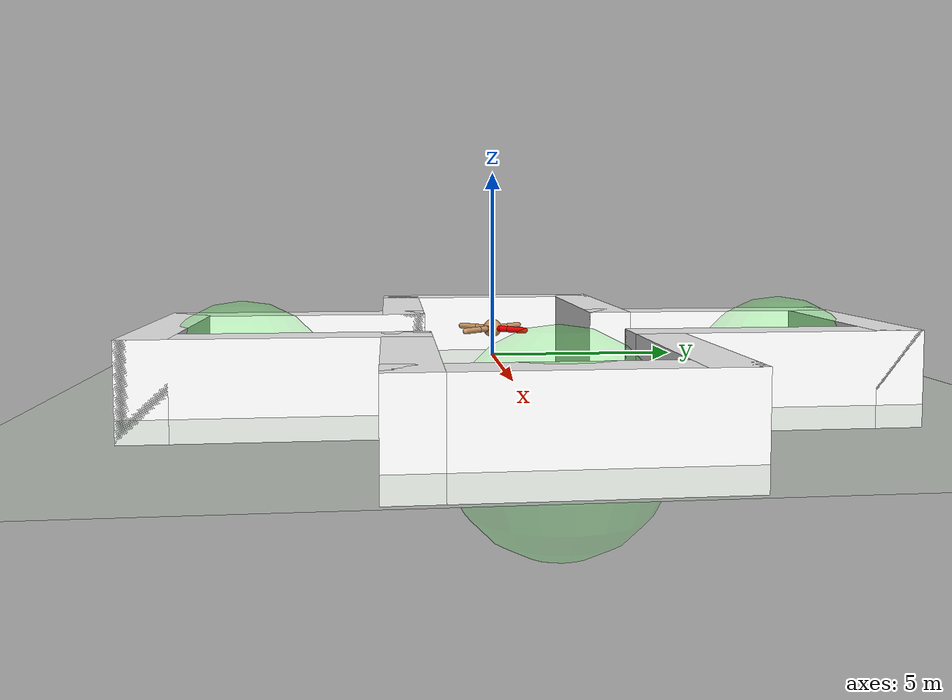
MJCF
<mujoco model="ant">
  <compiler angle="degree" coordinate="local" inertiafromgeom="true"/>
  <option integrator="RK4" timestep="0.01"/>
  <custom>
    <numeric data="0.0 0.0 0.55 1.0 0.0 0.0 0.0 0.0 1.0 0.0 -1.0 0.0 -1.0 0.0 1.0" name="init_qpos"/>
  </custom>
  <default>
    <joint armature="1" damping="1" limited="true"/>
    <geom conaffinity="0" condim="3" density="5.0" friction="1 0.5 0.5" margin="0.01" rgba="0.8 0.6 0.4 1"/>
  </default>
  <asset>
    <texture builtin="gradient" height="100" rgb1="1 1 1" rgb2="0 0 0" type="skybox" width="100"/>
    <texture builtin="flat" height="1278" mark="cross" markrgb="1 1 1" name="texgeom" random="0.01" rgb1="0.8 0.6 0.4" rgb2="0.8 0.6 0.4" type="cube" width="127"/>
    <texture builtin="checker" height="100" name="texplane" rgb1="0 0 0" rgb2="0.8 0.8 0.8" type="2d" width="100"/>
    <material name="MatPlane" reflectance="0.5" shininess="1" specular="1" texrepeat="60 60" texture="texplane"/>
    <material name="geom" texture="texgeom" texuniform="true"/>
  </asset>
  <worldbody>
    <light cutoff="100" diffuse="1 1 1" dir="-0 0 -1.3" directional="true" exponent="1" pos="0 0 1.3" specular=".1 .1 .1"/>
    <geom conaffinity="1" condim="3" material="MatPlane" name="floor" pos="0 0 0" rgba="0.8 0.9 0.8 1" size="40 40 40" type="plane"/>
    <body name="torso" pos="0 0 0.75">
      <camera name="track" mode="trackcom" pos="0 -3 0.3" xyaxes="1 0 0 0 0 1"/>
      <geom name="torso_geom" pos="0 0 0" size="0.25" type="sphere"/>
      <joint armature="0" damping="0" limited="false" margin="0.01" name="root" pos="0 0 0" type="free"/>
      <body name="front_left_leg" pos="0 0 0">
        <geom fromto="0.0 0.0 0.0 0.2 0.2 0.0" name="aux_1_geom" size="0.08" type="capsule" rgba="1 0 0 1"/>
        <body name="aux_1" pos="0.2 0.2 0">
          <joint axis="0 0 1" name="hip_1" pos="0.0 0.0 0.0" range="-30 30" type="hinge"/>
          <geom fromto="0.0 0.0 0.0 0.2 0.2 0.0" name="left_leg_geom" size="0.08" type="capsule" rgba="1 0 0 1"/>
          <body pos="0.2 0.2 0">
            <joint axis="-1 1 0" name="ankle_1" pos="0.0 0.0 0.0" range="30 70" type="hinge"/>
            <geom fromto="0.0 0.0 0.0 0.4 0.4 0.0" name="left_ankle_geom" size="0.08" type="capsule" rgba="1 0 0 1"/>
          </body>
        </body>
      </body>
      <body name="front_right_leg" pos="0 0 0">
        <geom fromto="0.0 0.0 0.0 -0.2 0.2 0.0" name="aux_2_geom" size="0.08" type="capsule"/>
        <body name="aux_2" pos="-0.2 0.2 0">
          <joint axis="0 0 1" name="hip_2" pos="0.0 0.0 0.0" range="-30 30" type="hinge"/>
          <geom fromto="0.0 0.0 0.0 -0.2 0.2 0.0" name="right_leg_geom" size="0.08" type="capsule"/>
          <body pos="-0.2 0.2 0">
            <joint axis="1 1 0" name="ankle_2" pos="0.0 0.0 0.0" range="-70 -30" type="hinge"/>
            <geom fromto="0.0 0.0 0.0 -0.4 0.4 0.0" name="right_ankle_geom" size="0.08" type="capsule"/>
          </body>
        </body>
      </body>
      <body name="back_leg" pos="0 0 0">
        <geom fromto="0.0 0.0 0.0 -0.2 -0.2 0.0" name="aux_3_geom" size="0.08" type="capsule"/>
        <body name="aux_3" pos="-0.2 -0.2 0">
          <joint axis="0 0 1" name="hip_3" pos="0.0 0.0 0.0" range="-30 30" type="hinge"/>
          <geom fromto="0.0 0.0 0.0 -0.2 -0.2 0.0" name="back_leg_geom" size="0.08" type="capsule"/>
          <body pos="-0.2 -0.2 0">
            <joint axis="-1 1 0" name="ankle_3" pos="0.0 0.0 0.0" range="-70 -30" type="hinge"/>
            <geom fromto="0.0 0.0 0.0 -0.4 -0.4 0.0" name="third_ankle_geom" size="0.08" type="capsule"/>
          </body>
        </body>
      </body>
      <body name="right_back_leg" pos="0 0 0">
        <geom fromto="0.0 0.0 0.0 0.2 -0.2 0.0" name="aux_4_geom" size="0.08" type="capsule"/>
        <body name="aux_4" pos="0.2 -0.2 0">
          <joint axis="0 0 1" name="hip_4" pos="0.0 0.0 0.0" range="-30 30" type="hinge"/>
          <geom fromto="0.0 0.0 0.0 0.2 -0.2 0.0" name="rightback_leg_geom" size="0.08" type="capsule"/>
          <body pos="0.2 -0.2 0">
            <joint axis="1 1 0" name="ankle_4" pos="0.0 0.0 0.0" range="30 70" type="hinge"/>
            <geom fromto="0.0 0.0 0.0 0.4 -0.4 0.0" name="fourth_ankle_geom" size="0.08" type="capsule"/>
          </body>
        </body>
      </body>
    </body>

    <geom name="wall-0" pos="1   -2.5 .5" rgba="1. 1. 1. 1" type="box" size="3 0.5 1" density='0.00001' contype="1" conaffinity="1"/>
    <geom name="wall-1" pos="-2     0 .5" rgba="1. 1. 1. 1" type="box" size="0.5 3 1" density='0.00001' contype="1" conaffinity="1"/>
    <geom name="wall-2" pos="1    2.5 .5" rgba="1. 1. 1. 1" type="box" size="3 0.5 1" density='0.00001' contype="1" conaffinity="1"/>

    <geom name="wall-3" pos="3.5   5 .5" rgba="1. 1. 1. 1" type="box" size="0.5 3 1" density='0.00001' contype="1" conaffinity="1"/>
    <geom name="wall-4" pos="6   7.5 .5" rgba="1. 1. 1. 1" type="box" size="3 0.5 1" density='0.00001' contype="1" conaffinity="1"/>
    <geom name="wall-5" pos="8.5   5 .5" rgba="1. 1. 1. 1" type="box" size="0.5 3 1" density='0.00001' contype="1" conaffinity="1"/>

    <geom name="wall-6" pos="11    -2.5 .5" rgba="1. 1. 1. 1" type="box" size="3 0.5 1" density='0.00001' contype="1" conaffinity="1"/>
    <geom name="wall-7" pos="13.5     0 .5" rgba="1. 1. 1. 1" type="box" size="0.5 3 1" density='0.00001' contype="1" conaffinity="1"/>
    <geom name="wall-8" pos="11     2.5 .5" rgba="1. 1. 1. 1" type="box" size="3 0.5 1" density='0.00001' contype="1" conaffinity="1"/>

    <geom name="wall-9" pos="3.5   -5 .5" rgba="1. 1. 1. 1" type="box" size="0.5 3 1" density='0.00001' contype="1" conaffinity="1"/>
    <geom name="wall-10" pos="6  -7.5 .5" rgba="1. 1. 1. 1" type="box" size="3 0.5 1" density='0.00001' contype="1" conaffinity="1"/>
    <geom name="wall-11" pos="8.5  -5 .5" rgba="1. 1. 1. 1" type="box" size="0.5 3 1" density='0.00001' contype="1" conaffinity="1"/>

  <geom name="target0" pos="6  6 0" rgba="0 1 0 0.2" type="sphere" size="2"/>
  <geom name="target1" pos="12 0 0" rgba="0 1 0 0.2" type="sphere" size="2"/>
  <geom name="target2" pos="6 -6 0" rgba="0 1 0 0.2" type="sphere" size="2"/>

  </worldbody>
  <actuator>
    <motor ctrllimited="true" ctrlrange="-1.0 1.0" joint="hip_4" gear="150"/>
    <motor ctrllimited="true" ctrlrange="-1.0 1.0" joint="ankle_4" gear="150"/>
    <motor ctrllimited="true" ctrlrange="-1.0 1.0" joint="hip_1" gear="150"/>
    <motor ctrllimited="true" ctrlrange="-1.0 1.0" joint="ankle_1" gear="150"/>
    <motor ctrllimited="true" ctrlrange="-1.0 1.0" joint="hip_2" gear="150"/>
    <motor ctrllimited="true" ctrlrange="-1.0 1.0" joint="ankle_2" gear="150"/>
    <motor ctrllimited="true" ctrlrange="-1.0 1.0" joint="hip_3" gear="150"/>
    <motor ctrllimited="true" ctrlrange="-1.0 1.0" joint="ankle_3" gear="150"/>
  </actuator>
</mujoco>
